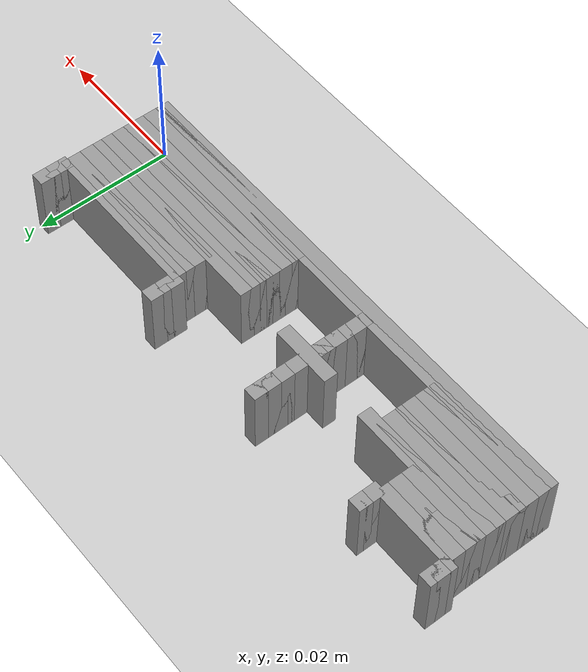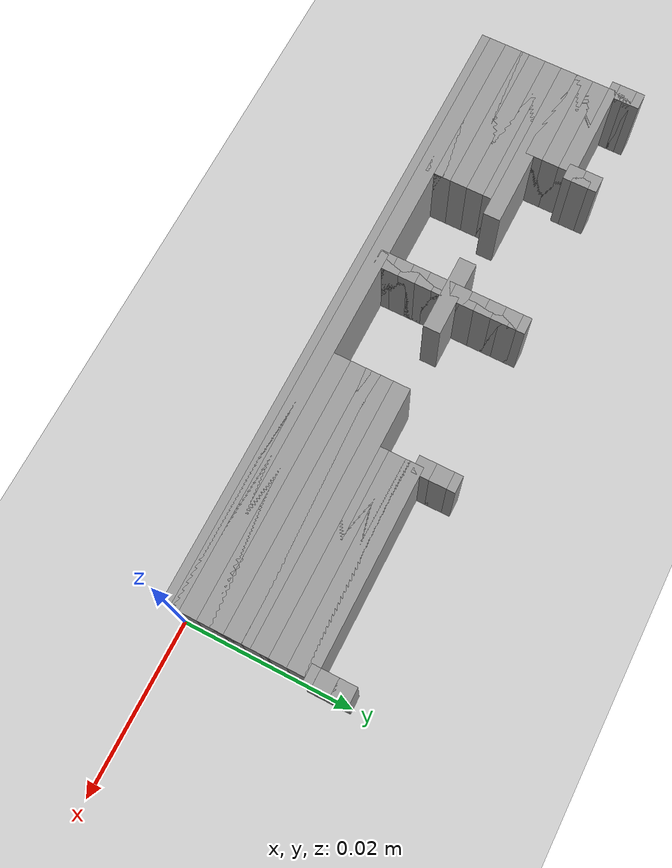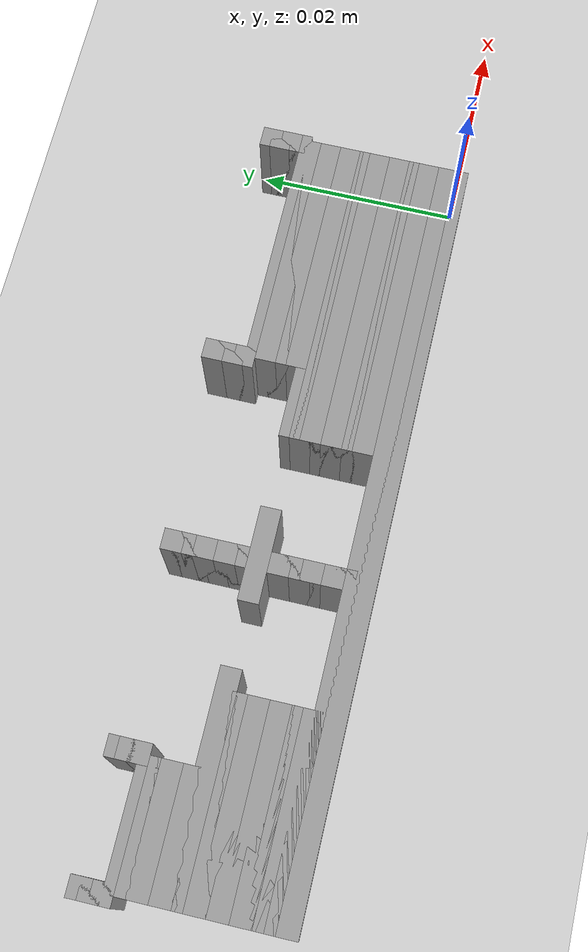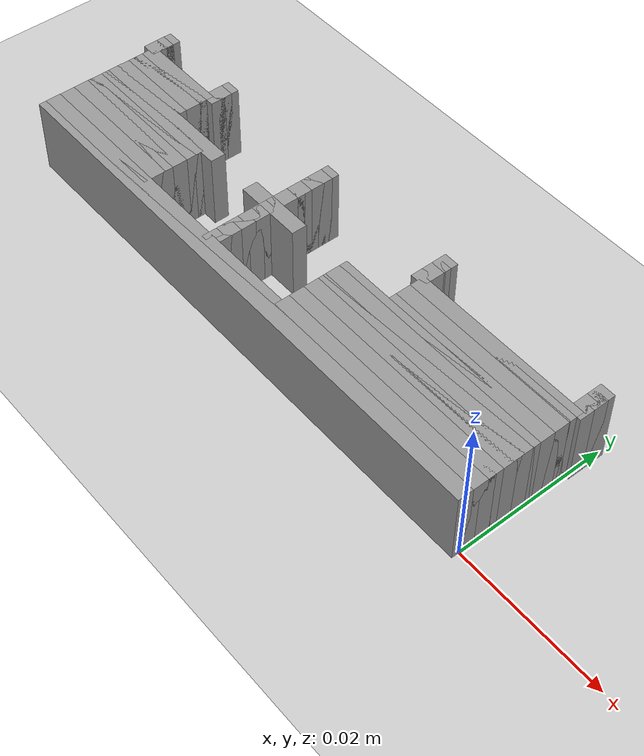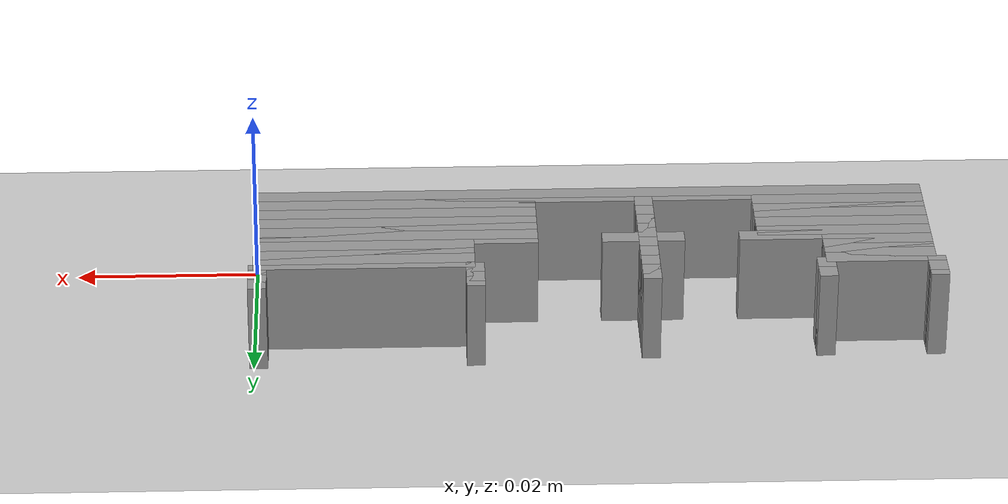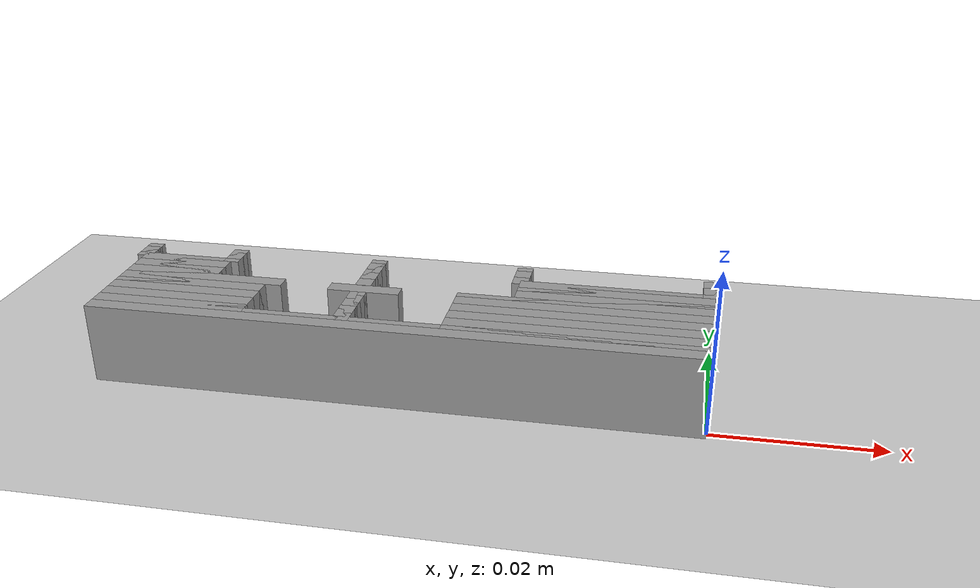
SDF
<sdf version="1.6">
 <world name="GridMap">
  <include><uri>model://sun</uri></include>
  <include><uri>model://ground_plane</uri></include>
  <model name="GridMap">
   <link name="Wall_(37.0,0.0)">
    <collision name="Wall_(37.0,0.0)_Collision">
     <geometry><box><size>0.074 0.002 0.01</size></box></geometry>
     <pose>-0.037 0.0 0.005 0 -0 0</pose>
    </collision>
    <inertial>
     <mass>0.5</mass>
     <pose>0 0.01 0 0 0 0</pose>
     <inertia><ixx>0.004</ixx><ixy>0.001</ixy><ixz>0</ixz><iyy>0.006</iyy><iyz>0</iyz><izz>0.007</izz></inertia>
    </inertial>
    <visual name="Wall_(37.0,0.0)_Visual">
     <geometry><box><size>0.074 0.002 0.01</size></box></geometry>
     <pose>-0.037 0.0 0.005 0 -0 0</pose>
     <material>
      <script><uri>file://media/materials/scripts/gazebo.material</uri><name>Gazebo/Grey</name></script>
      <ambient>1 1 1 1</ambient>
     </material>
     <meta><layer>0</layer></meta>
    </visual>
   </link>
   <link name="Wall_(37.0,1.0)">
    <collision name="Wall_(37.0,1.0)_Collision">
     <geometry><box><size>0.074 0.002 0.01</size></box></geometry>
     <pose>-0.037 0.001 0.005 0 -0 0</pose>
    </collision>
    <inertial>
     <mass>0.5</mass>
     <pose>0 0.01 0 0 0 0</pose>
     <inertia><ixx>0.004</ixx><ixy>0.001</ixy><ixz>0</ixz><iyy>0.006</iyy><iyz>0</iyz><izz>0.007</izz></inertia>
    </inertial>
    <visual name="Wall_(37.0,1.0)_Visual">
     <geometry><box><size>0.074 0.002 0.01</size></box></geometry>
     <pose>-0.037 0.001 0.005 0 -0 0</pose>
     <material>
      <script><uri>file://media/materials/scripts/gazebo.material</uri><name>Gazebo/Grey</name></script>
      <ambient>1 1 1 1</ambient>
     </material>
     <meta><layer>0</layer></meta>
    </visual>
   </link>
   <link name="Wall_(15.5,2.0)">
    <collision name="Wall_(15.5,2.0)_Collision">
     <geometry><box><size>0.031 0.002 0.01</size></box></geometry>
     <pose>-0.0155 0.002 0.005 0 -0 0</pose>
    </collision>
    <inertial>
     <mass>0.5</mass>
     <pose>0 0.01 0 0 0 0</pose>
     <inertia><ixx>0.004</ixx><ixy>0.001</ixy><ixz>0</ixz><iyy>0.006</iyy><iyz>0</iyz><izz>0.007</izz></inertia>
    </inertial>
    <visual name="Wall_(15.5,2.0)_Visual">
     <geometry><box><size>0.031 0.002 0.01</size></box></geometry>
     <pose>-0.0155 0.002 0.005 0 -0 0</pose>
     <material>
      <script><uri>file://media/materials/scripts/gazebo.material</uri><name>Gazebo/Grey</name></script>
      <ambient>1 1 1 1</ambient>
     </material>
     <meta><layer>0</layer></meta>
    </visual>
   </link>
   <link name="Wall_(43.0,2.0)">
    <collision name="Wall_(43.0,2.0)_Collision">
     <geometry><box><size>0.002 0.002 0.01</size></box></geometry>
     <pose>-0.043000000000000003 0.002 0.005 0 -0 0</pose>
    </collision>
    <inertial>
     <mass>0.5</mass>
     <pose>0 0.01 0 0 0 0</pose>
     <inertia><ixx>0.004</ixx><ixy>0.001</ixy><ixz>0</ixz><iyy>0.006</iyy><iyz>0</iyz><izz>0.007</izz></inertia>
    </inertial>
    <visual name="Wall_(43.0,2.0)_Visual">
     <geometry><box><size>0.002 0.002 0.01</size></box></geometry>
     <pose>-0.043000000000000003 0.002 0.005 0 -0 0</pose>
     <material>
      <script><uri>file://media/materials/scripts/gazebo.material</uri><name>Gazebo/Grey</name></script>
      <ambient>1 1 1 1</ambient>
     </material>
     <meta><layer>0</layer></meta>
    </visual>
   </link>
   <link name="Wall_(64.5,2.0)">
    <collision name="Wall_(64.5,2.0)_Collision">
     <geometry><box><size>0.019 0.002 0.01</size></box></geometry>
     <pose>-0.0645 0.002 0.005 0 -0 0</pose>
    </collision>
    <inertial>
     <mass>0.5</mass>
     <pose>0 0.01 0 0 0 0</pose>
     <inertia><ixx>0.004</ixx><ixy>0.001</ixy><ixz>0</ixz><iyy>0.006</iyy><iyz>0</iyz><izz>0.007</izz></inertia>
    </inertial>
    <visual name="Wall_(64.5,2.0)_Visual">
     <geometry><box><size>0.019 0.002 0.01</size></box></geometry>
     <pose>-0.0645 0.002 0.005 0 -0 0</pose>
     <material>
      <script><uri>file://media/materials/scripts/gazebo.material</uri><name>Gazebo/Grey</name></script>
      <ambient>1 1 1 1</ambient>
     </material>
     <meta><layer>0</layer></meta>
    </visual>
   </link>
   <link name="Wall_(15.5,3.0)">
    <collision name="Wall_(15.5,3.0)_Collision">
     <geometry><box><size>0.031 0.002 0.01</size></box></geometry>
     <pose>-0.0155 0.003 0.005 0 -0 0</pose>
    </collision>
    <inertial>
     <mass>0.5</mass>
     <pose>0 0.01 0 0 0 0</pose>
     <inertia><ixx>0.004</ixx><ixy>0.001</ixy><ixz>0</ixz><iyy>0.006</iyy><iyz>0</iyz><izz>0.007</izz></inertia>
    </inertial>
    <visual name="Wall_(15.5,3.0)_Visual">
     <geometry><box><size>0.031 0.002 0.01</size></box></geometry>
     <pose>-0.0155 0.003 0.005 0 -0 0</pose>
     <material>
      <script><uri>file://media/materials/scripts/gazebo.material</uri><name>Gazebo/Grey</name></script>
      <ambient>1 1 1 1</ambient>
     </material>
     <meta><layer>0</layer></meta>
    </visual>
   </link>
   <link name="Wall_(43.0,3.0)">
    <collision name="Wall_(43.0,3.0)_Collision">
     <geometry><box><size>0.002 0.002 0.01</size></box></geometry>
     <pose>-0.043000000000000003 0.003 0.005 0 -0 0</pose>
    </collision>
    <inertial>
     <mass>0.5</mass>
     <pose>0 0.01 0 0 0 0</pose>
     <inertia><ixx>0.004</ixx><ixy>0.001</ixy><ixz>0</ixz><iyy>0.006</iyy><iyz>0</iyz><izz>0.007</izz></inertia>
    </inertial>
    <visual name="Wall_(43.0,3.0)_Visual">
     <geometry><box><size>0.002 0.002 0.01</size></box></geometry>
     <pose>-0.043000000000000003 0.003 0.005 0 -0 0</pose>
     <material>
      <script><uri>file://media/materials/scripts/gazebo.material</uri><name>Gazebo/Grey</name></script>
      <ambient>1 1 1 1</ambient>
     </material>
     <meta><layer>0</layer></meta>
    </visual>
   </link>
   <link name="Wall_(64.5,3.0)">
    <collision name="Wall_(64.5,3.0)_Collision">
     <geometry><box><size>0.019 0.002 0.01</size></box></geometry>
     <pose>-0.0645 0.003 0.005 0 -0 0</pose>
    </collision>
    <inertial>
     <mass>0.5</mass>
     <pose>0 0.01 0 0 0 0</pose>
     <inertia><ixx>0.004</ixx><ixy>0.001</ixy><ixz>0</ixz><iyy>0.006</iyy><iyz>0</iyz><izz>0.007</izz></inertia>
    </inertial>
    <visual name="Wall_(64.5,3.0)_Visual">
     <geometry><box><size>0.019 0.002 0.01</size></box></geometry>
     <pose>-0.0645 0.003 0.005 0 -0 0</pose>
     <material>
      <script><uri>file://media/materials/scripts/gazebo.material</uri><name>Gazebo/Grey</name></script>
      <ambient>1 1 1 1</ambient>
     </material>
     <meta><layer>0</layer></meta>
    </visual>
   </link>
   <link name="Wall_(15.5,4.0)">
    <collision name="Wall_(15.5,4.0)_Collision">
     <geometry><box><size>0.031 0.002 0.01</size></box></geometry>
     <pose>-0.0155 0.004 0.005 0 -0 0</pose>
    </collision>
    <inertial>
     <mass>0.5</mass>
     <pose>0 0.01 0 0 0 0</pose>
     <inertia><ixx>0.004</ixx><ixy>0.001</ixy><ixz>0</ixz><iyy>0.006</iyy><iyz>0</iyz><izz>0.007</izz></inertia>
    </inertial>
    <visual name="Wall_(15.5,4.0)_Visual">
     <geometry><box><size>0.031 0.002 0.01</size></box></geometry>
     <pose>-0.0155 0.004 0.005 0 -0 0</pose>
     <material>
      <script><uri>file://media/materials/scripts/gazebo.material</uri><name>Gazebo/Grey</name></script>
      <ambient>1 1 1 1</ambient>
     </material>
     <meta><layer>0</layer></meta>
    </visual>
   </link>
   <link name="Wall_(43.0,4.0)">
    <collision name="Wall_(43.0,4.0)_Collision">
     <geometry><box><size>0.002 0.002 0.01</size></box></geometry>
     <pose>-0.043000000000000003 0.004 0.005 0 -0 0</pose>
    </collision>
    <inertial>
     <mass>0.5</mass>
     <pose>0 0.01 0 0 0 0</pose>
     <inertia><ixx>0.004</ixx><ixy>0.001</ixy><ixz>0</ixz><iyy>0.006</iyy><iyz>0</iyz><izz>0.007</izz></inertia>
    </inertial>
    <visual name="Wall_(43.0,4.0)_Visual">
     <geometry><box><size>0.002 0.002 0.01</size></box></geometry>
     <pose>-0.043000000000000003 0.004 0.005 0 -0 0</pose>
     <material>
      <script><uri>file://media/materials/scripts/gazebo.material</uri><name>Gazebo/Grey</name></script>
      <ambient>1 1 1 1</ambient>
     </material>
     <meta><layer>0</layer></meta>
    </visual>
   </link>
   <link name="Wall_(64.5,4.0)">
    <collision name="Wall_(64.5,4.0)_Collision">
     <geometry><box><size>0.019 0.002 0.01</size></box></geometry>
     <pose>-0.0645 0.004 0.005 0 -0 0</pose>
    </collision>
    <inertial>
     <mass>0.5</mass>
     <pose>0 0.01 0 0 0 0</pose>
     <inertia><ixx>0.004</ixx><ixy>0.001</ixy><ixz>0</ixz><iyy>0.006</iyy><iyz>0</iyz><izz>0.007</izz></inertia>
    </inertial>
    <visual name="Wall_(64.5,4.0)_Visual">
     <geometry><box><size>0.019 0.002 0.01</size></box></geometry>
     <pose>-0.0645 0.004 0.005 0 -0 0</pose>
     <material>
      <script><uri>file://media/materials/scripts/gazebo.material</uri><name>Gazebo/Grey</name></script>
      <ambient>1 1 1 1</ambient>
     </material>
     <meta><layer>0</layer></meta>
    </visual>
   </link>
   <link name="Wall_(15.5,5.0)">
    <collision name="Wall_(15.5,5.0)_Collision">
     <geometry><box><size>0.031 0.002 0.01</size></box></geometry>
     <pose>-0.0155 0.005 0.005 0 -0 0</pose>
    </collision>
    <inertial>
     <mass>0.5</mass>
     <pose>0 0.01 0 0 0 0</pose>
     <inertia><ixx>0.004</ixx><ixy>0.001</ixy><ixz>0</ixz><iyy>0.006</iyy><iyz>0</iyz><izz>0.007</izz></inertia>
    </inertial>
    <visual name="Wall_(15.5,5.0)_Visual">
     <geometry><box><size>0.031 0.002 0.01</size></box></geometry>
     <pose>-0.0155 0.005 0.005 0 -0 0</pose>
     <material>
      <script><uri>file://media/materials/scripts/gazebo.material</uri><name>Gazebo/Grey</name></script>
      <ambient>1 1 1 1</ambient>
     </material>
     <meta><layer>0</layer></meta>
    </visual>
   </link>
   <link name="Wall_(43.0,5.0)">
    <collision name="Wall_(43.0,5.0)_Collision">
     <geometry><box><size>0.002 0.002 0.01</size></box></geometry>
     <pose>-0.043000000000000003 0.005 0.005 0 -0 0</pose>
    </collision>
    <inertial>
     <mass>0.5</mass>
     <pose>0 0.01 0 0 0 0</pose>
     <inertia><ixx>0.004</ixx><ixy>0.001</ixy><ixz>0</ixz><iyy>0.006</iyy><iyz>0</iyz><izz>0.007</izz></inertia>
    </inertial>
    <visual name="Wall_(43.0,5.0)_Visual">
     <geometry><box><size>0.002 0.002 0.01</size></box></geometry>
     <pose>-0.043000000000000003 0.005 0.005 0 -0 0</pose>
     <material>
      <script><uri>file://media/materials/scripts/gazebo.material</uri><name>Gazebo/Grey</name></script>
      <ambient>1 1 1 1</ambient>
     </material>
     <meta><layer>0</layer></meta>
    </visual>
   </link>
   <link name="Wall_(64.5,5.0)">
    <collision name="Wall_(64.5,5.0)_Collision">
     <geometry><box><size>0.019 0.002 0.01</size></box></geometry>
     <pose>-0.0645 0.005 0.005 0 -0 0</pose>
    </collision>
    <inertial>
     <mass>0.5</mass>
     <pose>0 0.01 0 0 0 0</pose>
     <inertia><ixx>0.004</ixx><ixy>0.001</ixy><ixz>0</ixz><iyy>0.006</iyy><iyz>0</iyz><izz>0.007</izz></inertia>
    </inertial>
    <visual name="Wall_(64.5,5.0)_Visual">
     <geometry><box><size>0.019 0.002 0.01</size></box></geometry>
     <pose>-0.0645 0.005 0.005 0 -0 0</pose>
     <material>
      <script><uri>file://media/materials/scripts/gazebo.material</uri><name>Gazebo/Grey</name></script>
      <ambient>1 1 1 1</ambient>
     </material>
     <meta><layer>0</layer></meta>
    </visual>
   </link>
   <link name="Wall_(15.5,6.0)">
    <collision name="Wall_(15.5,6.0)_Collision">
     <geometry><box><size>0.031 0.002 0.01</size></box></geometry>
     <pose>-0.0155 0.006 0.005 0 -0 0</pose>
    </collision>
    <inertial>
     <mass>0.5</mass>
     <pose>0 0.01 0 0 0 0</pose>
     <inertia><ixx>0.004</ixx><ixy>0.001</ixy><ixz>0</ixz><iyy>0.006</iyy><iyz>0</iyz><izz>0.007</izz></inertia>
    </inertial>
    <visual name="Wall_(15.5,6.0)_Visual">
     <geometry><box><size>0.031 0.002 0.01</size></box></geometry>
     <pose>-0.0155 0.006 0.005 0 -0 0</pose>
     <material>
      <script><uri>file://media/materials/scripts/gazebo.material</uri><name>Gazebo/Grey</name></script>
      <ambient>1 1 1 1</ambient>
     </material>
     <meta><layer>0</layer></meta>
    </visual>
   </link>
   <link name="Wall_(43.0,6.0)">
    <collision name="Wall_(43.0,6.0)_Collision">
     <geometry><box><size>0.002 0.002 0.01</size></box></geometry>
     <pose>-0.043000000000000003 0.006 0.005 0 -0 0</pose>
    </collision>
    <inertial>
     <mass>0.5</mass>
     <pose>0 0.01 0 0 0 0</pose>
     <inertia><ixx>0.004</ixx><ixy>0.001</ixy><ixz>0</ixz><iyy>0.006</iyy><iyz>0</iyz><izz>0.007</izz></inertia>
    </inertial>
    <visual name="Wall_(43.0,6.0)_Visual">
     <geometry><box><size>0.002 0.002 0.01</size></box></geometry>
     <pose>-0.043000000000000003 0.006 0.005 0 -0 0</pose>
     <material>
      <script><uri>file://media/materials/scripts/gazebo.material</uri><name>Gazebo/Grey</name></script>
      <ambient>1 1 1 1</ambient>
     </material>
     <meta><layer>0</layer></meta>
    </visual>
   </link>
   <link name="Wall_(64.5,6.0)">
    <collision name="Wall_(64.5,6.0)_Collision">
     <geometry><box><size>0.019 0.002 0.01</size></box></geometry>
     <pose>-0.0645 0.006 0.005 0 -0 0</pose>
    </collision>
    <inertial>
     <mass>0.5</mass>
     <pose>0 0.01 0 0 0 0</pose>
     <inertia><ixx>0.004</ixx><ixy>0.001</ixy><ixz>0</ixz><iyy>0.006</iyy><iyz>0</iyz><izz>0.007</izz></inertia>
    </inertial>
    <visual name="Wall_(64.5,6.0)_Visual">
     <geometry><box><size>0.019 0.002 0.01</size></box></geometry>
     <pose>-0.0645 0.006 0.005 0 -0 0</pose>
     <material>
      <script><uri>file://media/materials/scripts/gazebo.material</uri><name>Gazebo/Grey</name></script>
      <ambient>1 1 1 1</ambient>
     </material>
     <meta><layer>0</layer></meta>
    </visual>
   </link>
   <link name="Wall_(15.5,7.0)">
    <collision name="Wall_(15.5,7.0)_Collision">
     <geometry><box><size>0.031 0.002 0.01</size></box></geometry>
     <pose>-0.0155 0.007 0.005 0 -0 0</pose>
    </collision>
    <inertial>
     <mass>0.5</mass>
     <pose>0 0.01 0 0 0 0</pose>
     <inertia><ixx>0.004</ixx><ixy>0.001</ixy><ixz>0</ixz><iyy>0.006</iyy><iyz>0</iyz><izz>0.007</izz></inertia>
    </inertial>
    <visual name="Wall_(15.5,7.0)_Visual">
     <geometry><box><size>0.031 0.002 0.01</size></box></geometry>
     <pose>-0.0155 0.007 0.005 0 -0 0</pose>
     <material>
      <script><uri>file://media/materials/scripts/gazebo.material</uri><name>Gazebo/Grey</name></script>
      <ambient>1 1 1 1</ambient>
     </material>
     <meta><layer>0</layer></meta>
    </visual>
   </link>
   <link name="Wall_(43.0,7.0)">
    <collision name="Wall_(43.0,7.0)_Collision">
     <geometry><box><size>0.002 0.002 0.01</size></box></geometry>
     <pose>-0.043000000000000003 0.007 0.005 0 -0 0</pose>
    </collision>
    <inertial>
     <mass>0.5</mass>
     <pose>0 0.01 0 0 0 0</pose>
     <inertia><ixx>0.004</ixx><ixy>0.001</ixy><ixz>0</ixz><iyy>0.006</iyy><iyz>0</iyz><izz>0.007</izz></inertia>
    </inertial>
    <visual name="Wall_(43.0,7.0)_Visual">
     <geometry><box><size>0.002 0.002 0.01</size></box></geometry>
     <pose>-0.043000000000000003 0.007 0.005 0 -0 0</pose>
     <material>
      <script><uri>file://media/materials/scripts/gazebo.material</uri><name>Gazebo/Grey</name></script>
      <ambient>1 1 1 1</ambient>
     </material>
     <meta><layer>0</layer></meta>
    </visual>
   </link>
   <link name="Wall_(64.5,7.0)">
    <collision name="Wall_(64.5,7.0)_Collision">
     <geometry><box><size>0.019 0.002 0.01</size></box></geometry>
     <pose>-0.0645 0.007 0.005 0 -0 0</pose>
    </collision>
    <inertial>
     <mass>0.5</mass>
     <pose>0 0.01 0 0 0 0</pose>
     <inertia><ixx>0.004</ixx><ixy>0.001</ixy><ixz>0</ixz><iyy>0.006</iyy><iyz>0</iyz><izz>0.007</izz></inertia>
    </inertial>
    <visual name="Wall_(64.5,7.0)_Visual">
     <geometry><box><size>0.019 0.002 0.01</size></box></geometry>
     <pose>-0.0645 0.007 0.005 0 -0 0</pose>
     <material>
      <script><uri>file://media/materials/scripts/gazebo.material</uri><name>Gazebo/Grey</name></script>
      <ambient>1 1 1 1</ambient>
     </material>
     <meta><layer>0</layer></meta>
    </visual>
   </link>
   <link name="Wall_(15.5,8.0)">
    <collision name="Wall_(15.5,8.0)_Collision">
     <geometry><box><size>0.031 0.002 0.01</size></box></geometry>
     <pose>-0.0155 0.008 0.005 0 -0 0</pose>
    </collision>
    <inertial>
     <mass>0.5</mass>
     <pose>0 0.01 0 0 0 0</pose>
     <inertia><ixx>0.004</ixx><ixy>0.001</ixy><ixz>0</ixz><iyy>0.006</iyy><iyz>0</iyz><izz>0.007</izz></inertia>
    </inertial>
    <visual name="Wall_(15.5,8.0)_Visual">
     <geometry><box><size>0.031 0.002 0.01</size></box></geometry>
     <pose>-0.0155 0.008 0.005 0 -0 0</pose>
     <material>
      <script><uri>file://media/materials/scripts/gazebo.material</uri><name>Gazebo/Grey</name></script>
      <ambient>1 1 1 1</ambient>
     </material>
     <meta><layer>0</layer></meta>
    </visual>
   </link>
   <link name="Wall_(43.0,8.0)">
    <collision name="Wall_(43.0,8.0)_Collision">
     <geometry><box><size>0.002 0.002 0.01</size></box></geometry>
     <pose>-0.043000000000000003 0.008 0.005 0 -0 0</pose>
    </collision>
    <inertial>
     <mass>0.5</mass>
     <pose>0 0.01 0 0 0 0</pose>
     <inertia><ixx>0.004</ixx><ixy>0.001</ixy><ixz>0</ixz><iyy>0.006</iyy><iyz>0</iyz><izz>0.007</izz></inertia>
    </inertial>
    <visual name="Wall_(43.0,8.0)_Visual">
     <geometry><box><size>0.002 0.002 0.01</size></box></geometry>
     <pose>-0.043000000000000003 0.008 0.005 0 -0 0</pose>
     <material>
      <script><uri>file://media/materials/scripts/gazebo.material</uri><name>Gazebo/Grey</name></script>
      <ambient>1 1 1 1</ambient>
     </material>
     <meta><layer>0</layer></meta>
    </visual>
   </link>
   <link name="Wall_(64.5,8.0)">
    <collision name="Wall_(64.5,8.0)_Collision">
     <geometry><box><size>0.019 0.002 0.01</size></box></geometry>
     <pose>-0.0645 0.008 0.005 0 -0 0</pose>
    </collision>
    <inertial>
     <mass>0.5</mass>
     <pose>0 0.01 0 0 0 0</pose>
     <inertia><ixx>0.004</ixx><ixy>0.001</ixy><ixz>0</ixz><iyy>0.006</iyy><iyz>0</iyz><izz>0.007</izz></inertia>
    </inertial>
    <visual name="Wall_(64.5,8.0)_Visual">
     <geometry><box><size>0.019 0.002 0.01</size></box></geometry>
     <pose>-0.0645 0.008 0.005 0 -0 0</pose>
     <material>
      <script><uri>file://media/materials/scripts/gazebo.material</uri><name>Gazebo/Grey</name></script>
      <ambient>1 1 1 1</ambient>
     </material>
     <meta><layer>0</layer></meta>
    </visual>
   </link>
   <link name="Wall_(15.5,9.0)">
    <collision name="Wall_(15.5,9.0)_Collision">
     <geometry><box><size>0.031 0.002 0.01</size></box></geometry>
     <pose>-0.0155 0.009000000000000001 0.005 0 -0 0</pose>
    </collision>
    <inertial>
     <mass>0.5</mass>
     <pose>0 0.01 0 0 0 0</pose>
     <inertia><ixx>0.004</ixx><ixy>0.001</ixy><ixz>0</ixz><iyy>0.006</iyy><iyz>0</iyz><izz>0.007</izz></inertia>
    </inertial>
    <visual name="Wall_(15.5,9.0)_Visual">
     <geometry><box><size>0.031 0.002 0.01</size></box></geometry>
     <pose>-0.0155 0.009000000000000001 0.005 0 -0 0</pose>
     <material>
      <script><uri>file://media/materials/scripts/gazebo.material</uri><name>Gazebo/Grey</name></script>
      <ambient>1 1 1 1</ambient>
     </material>
     <meta><layer>0</layer></meta>
    </visual>
   </link>
   <link name="Wall_(43.0,9.0)">
    <collision name="Wall_(43.0,9.0)_Collision">
     <geometry><box><size>0.002 0.002 0.01</size></box></geometry>
     <pose>-0.043000000000000003 0.009000000000000001 0.005 0 -0 0</pose>
    </collision>
    <inertial>
     <mass>0.5</mass>
     <pose>0 0.01 0 0 0 0</pose>
     <inertia><ixx>0.004</ixx><ixy>0.001</ixy><ixz>0</ixz><iyy>0.006</iyy><iyz>0</iyz><izz>0.007</izz></inertia>
    </inertial>
    <visual name="Wall_(43.0,9.0)_Visual">
     <geometry><box><size>0.002 0.002 0.01</size></box></geometry>
     <pose>-0.043000000000000003 0.009000000000000001 0.005 0 -0 0</pose>
     <material>
      <script><uri>file://media/materials/scripts/gazebo.material</uri><name>Gazebo/Grey</name></script>
      <ambient>1 1 1 1</ambient>
     </material>
     <meta><layer>0</layer></meta>
    </visual>
   </link>
   <link name="Wall_(64.5,9.0)">
    <collision name="Wall_(64.5,9.0)_Collision">
     <geometry><box><size>0.019 0.002 0.01</size></box></geometry>
     <pose>-0.0645 0.009000000000000001 0.005 0 -0 0</pose>
    </collision>
    <inertial>
     <mass>0.5</mass>
     <pose>0 0.01 0 0 0 0</pose>
     <inertia><ixx>0.004</ixx><ixy>0.001</ixy><ixz>0</ixz><iyy>0.006</iyy><iyz>0</iyz><izz>0.007</izz></inertia>
    </inertial>
    <visual name="Wall_(64.5,9.0)_Visual">
     <geometry><box><size>0.019 0.002 0.01</size></box></geometry>
     <pose>-0.0645 0.009000000000000001 0.005 0 -0 0</pose>
     <material>
      <script><uri>file://media/materials/scripts/gazebo.material</uri><name>Gazebo/Grey</name></script>
      <ambient>1 1 1 1</ambient>
     </material>
     <meta><layer>0</layer></meta>
    </visual>
   </link>
   <link name="Wall_(15.5,10.0)">
    <collision name="Wall_(15.5,10.0)_Collision">
     <geometry><box><size>0.031 0.002 0.01</size></box></geometry>
     <pose>-0.0155 0.01 0.005 0 -0 0</pose>
    </collision>
    <inertial>
     <mass>0.5</mass>
     <pose>0 0.01 0 0 0 0</pose>
     <inertia><ixx>0.004</ixx><ixy>0.001</ixy><ixz>0</ixz><iyy>0.006</iyy><iyz>0</iyz><izz>0.007</izz></inertia>
    </inertial>
    <visual name="Wall_(15.5,10.0)_Visual">
     <geometry><box><size>0.031 0.002 0.01</size></box></geometry>
     <pose>-0.0155 0.01 0.005 0 -0 0</pose>
     <material>
      <script><uri>file://media/materials/scripts/gazebo.material</uri><name>Gazebo/Grey</name></script>
      <ambient>1 1 1 1</ambient>
     </material>
     <meta><layer>0</layer></meta>
    </visual>
   </link>
   <link name="Wall_(42.5,10.0)">
    <collision name="Wall_(42.5,10.0)_Collision">
     <geometry><box><size>0.009000000000000001 0.002 0.01</size></box></geometry>
     <pose>-0.0425 0.01 0.005 0 -0 0</pose>
    </collision>
    <inertial>
     <mass>0.5</mass>
     <pose>0 0.01 0 0 0 0</pose>
     <inertia><ixx>0.004</ixx><ixy>0.001</ixy><ixz>0</ixz><iyy>0.006</iyy><iyz>0</iyz><izz>0.007</izz></inertia>
    </inertial>
    <visual name="Wall_(42.5,10.0)_Visual">
     <geometry><box><size>0.009000000000000001 0.002 0.01</size></box></geometry>
     <pose>-0.0425 0.01 0.005 0 -0 0</pose>
     <material>
      <script><uri>file://media/materials/scripts/gazebo.material</uri><name>Gazebo/Grey</name></script>
      <ambient>1 1 1 1</ambient>
     </material>
     <meta><layer>0</layer></meta>
    </visual>
   </link>
   <link name="Wall_(63.5,10.0)">
    <collision name="Wall_(63.5,10.0)_Collision">
     <geometry><box><size>0.021 0.002 0.01</size></box></geometry>
     <pose>-0.0635 0.01 0.005 0 -0 0</pose>
    </collision>
    <inertial>
     <mass>0.5</mass>
     <pose>0 0.01 0 0 0 0</pose>
     <inertia><ixx>0.004</ixx><ixy>0.001</ixy><ixz>0</ixz><iyy>0.006</iyy><iyz>0</iyz><izz>0.007</izz></inertia>
    </inertial>
    <visual name="Wall_(63.5,10.0)_Visual">
     <geometry><box><size>0.021 0.002 0.01</size></box></geometry>
     <pose>-0.0635 0.01 0.005 0 -0 0</pose>
     <material>
      <script><uri>file://media/materials/scripts/gazebo.material</uri><name>Gazebo/Grey</name></script>
      <ambient>1 1 1 1</ambient>
     </material>
     <meta><layer>0</layer></meta>
    </visual>
   </link>
   <link name="Wall_(12.0,11.0)">
    <collision name="Wall_(12.0,11.0)_Collision">
     <geometry><box><size>0.024 0.002 0.01</size></box></geometry>
     <pose>-0.012 0.011 0.005 0 -0 0</pose>
    </collision>
    <inertial>
     <mass>0.5</mass>
     <pose>0 0.01 0 0 0 0</pose>
     <inertia><ixx>0.004</ixx><ixy>0.001</ixy><ixz>0</ixz><iyy>0.006</iyy><iyz>0</iyz><izz>0.007</izz></inertia>
    </inertial>
    <visual name="Wall_(12.0,11.0)_Visual">
     <geometry><box><size>0.024 0.002 0.01</size></box></geometry>
     <pose>-0.012 0.011 0.005 0 -0 0</pose>
     <material>
      <script><uri>file://media/materials/scripts/gazebo.material</uri><name>Gazebo/Grey</name></script>
      <ambient>1 1 1 1</ambient>
     </material>
     <meta><layer>0</layer></meta>
    </visual>
   </link>
   <link name="Wall_(43.0,11.0)">
    <collision name="Wall_(43.0,11.0)_Collision">
     <geometry><box><size>0.002 0.002 0.01</size></box></geometry>
     <pose>-0.043000000000000003 0.011 0.005 0 -0 0</pose>
    </collision>
    <inertial>
     <mass>0.5</mass>
     <pose>0 0.01 0 0 0 0</pose>
     <inertia><ixx>0.004</ixx><ixy>0.001</ixy><ixz>0</ixz><iyy>0.006</iyy><iyz>0</iyz><izz>0.007</izz></inertia>
    </inertial>
    <visual name="Wall_(43.0,11.0)_Visual">
     <geometry><box><size>0.002 0.002 0.01</size></box></geometry>
     <pose>-0.043000000000000003 0.011 0.005 0 -0 0</pose>
     <material>
      <script><uri>file://media/materials/scripts/gazebo.material</uri><name>Gazebo/Grey</name></script>
      <ambient>1 1 1 1</ambient>
     </material>
     <meta><layer>0</layer></meta>
    </visual>
   </link>
   <link name="Wall_(68.0,11.0)">
    <collision name="Wall_(68.0,11.0)_Collision">
     <geometry><box><size>0.012 0.002 0.01</size></box></geometry>
     <pose>-0.068 0.011 0.005 0 -0 0</pose>
    </collision>
    <inertial>
     <mass>0.5</mass>
     <pose>0 0.01 0 0 0 0</pose>
     <inertia><ixx>0.004</ixx><ixy>0.001</ixy><ixz>0</ixz><iyy>0.006</iyy><iyz>0</iyz><izz>0.007</izz></inertia>
    </inertial>
    <visual name="Wall_(68.0,11.0)_Visual">
     <geometry><box><size>0.012 0.002 0.01</size></box></geometry>
     <pose>-0.068 0.011 0.005 0 -0 0</pose>
     <material>
      <script><uri>file://media/materials/scripts/gazebo.material</uri><name>Gazebo/Grey</name></script>
      <ambient>1 1 1 1</ambient>
     </material>
     <meta><layer>0</layer></meta>
    </visual>
   </link>
   <link name="Wall_(12.0,12.0)">
    <collision name="Wall_(12.0,12.0)_Collision">
     <geometry><box><size>0.024 0.002 0.01</size></box></geometry>
     <pose>-0.012 0.012 0.005 0 -0 0</pose>
    </collision>
    <inertial>
     <mass>0.5</mass>
     <pose>0 0.01 0 0 0 0</pose>
     <inertia><ixx>0.004</ixx><ixy>0.001</ixy><ixz>0</ixz><iyy>0.006</iyy><iyz>0</iyz><izz>0.007</izz></inertia>
    </inertial>
    <visual name="Wall_(12.0,12.0)_Visual">
     <geometry><box><size>0.024 0.002 0.01</size></box></geometry>
     <pose>-0.012 0.012 0.005 0 -0 0</pose>
     <material>
      <script><uri>file://media/materials/scripts/gazebo.material</uri><name>Gazebo/Grey</name></script>
      <ambient>1 1 1 1</ambient>
     </material>
     <meta><layer>0</layer></meta>
    </visual>
   </link>
   <link name="Wall_(43.0,12.0)">
    <collision name="Wall_(43.0,12.0)_Collision">
     <geometry><box><size>0.002 0.002 0.01</size></box></geometry>
     <pose>-0.043000000000000003 0.012 0.005 0 -0 0</pose>
    </collision>
    <inertial>
     <mass>0.5</mass>
     <pose>0 0.01 0 0 0 0</pose>
     <inertia><ixx>0.004</ixx><ixy>0.001</ixy><ixz>0</ixz><iyy>0.006</iyy><iyz>0</iyz><izz>0.007</izz></inertia>
    </inertial>
    <visual name="Wall_(43.0,12.0)_Visual">
     <geometry><box><size>0.002 0.002 0.01</size></box></geometry>
     <pose>-0.043000000000000003 0.012 0.005 0 -0 0</pose>
     <material>
      <script><uri>file://media/materials/scripts/gazebo.material</uri><name>Gazebo/Grey</name></script>
      <ambient>1 1 1 1</ambient>
     </material>
     <meta><layer>0</layer></meta>
    </visual>
   </link>
   <link name="Wall_(68.0,12.0)">
    <collision name="Wall_(68.0,12.0)_Collision">
     <geometry><box><size>0.012 0.002 0.01</size></box></geometry>
     <pose>-0.068 0.012 0.005 0 -0 0</pose>
    </collision>
    <inertial>
     <mass>0.5</mass>
     <pose>0 0.01 0 0 0 0</pose>
     <inertia><ixx>0.004</ixx><ixy>0.001</ixy><ixz>0</ixz><iyy>0.006</iyy><iyz>0</iyz><izz>0.007</izz></inertia>
    </inertial>
    <visual name="Wall_(68.0,12.0)_Visual">
     <geometry><box><size>0.012 0.002 0.01</size></box></geometry>
     <pose>-0.068 0.012 0.005 0 -0 0</pose>
     <material>
      <script><uri>file://media/materials/scripts/gazebo.material</uri><name>Gazebo/Grey</name></script>
      <ambient>1 1 1 1</ambient>
     </material>
     <meta><layer>0</layer></meta>
    </visual>
   </link>
   <link name="Wall_(12.0,13.0)">
    <collision name="Wall_(12.0,13.0)_Collision">
     <geometry><box><size>0.024 0.002 0.01</size></box></geometry>
     <pose>-0.012 0.013000000000000001 0.005 0 -0 0</pose>
    </collision>
    <inertial>
     <mass>0.5</mass>
     <pose>0 0.01 0 0 0 0</pose>
     <inertia><ixx>0.004</ixx><ixy>0.001</ixy><ixz>0</ixz><iyy>0.006</iyy><iyz>0</iyz><izz>0.007</izz></inertia>
    </inertial>
    <visual name="Wall_(12.0,13.0)_Visual">
     <geometry><box><size>0.024 0.002 0.01</size></box></geometry>
     <pose>-0.012 0.013000000000000001 0.005 0 -0 0</pose>
     <material>
      <script><uri>file://media/materials/scripts/gazebo.material</uri><name>Gazebo/Grey</name></script>
      <ambient>1 1 1 1</ambient>
     </material>
     <meta><layer>0</layer></meta>
    </visual>
   </link>
   <link name="Wall_(43.0,13.0)">
    <collision name="Wall_(43.0,13.0)_Collision">
     <geometry><box><size>0.002 0.002 0.01</size></box></geometry>
     <pose>-0.043000000000000003 0.013000000000000001 0.005 0 -0 0</pose>
    </collision>
    <inertial>
     <mass>0.5</mass>
     <pose>0 0.01 0 0 0 0</pose>
     <inertia><ixx>0.004</ixx><ixy>0.001</ixy><ixz>0</ixz><iyy>0.006</iyy><iyz>0</iyz><izz>0.007</izz></inertia>
    </inertial>
    <visual name="Wall_(43.0,13.0)_Visual">
     <geometry><box><size>0.002 0.002 0.01</size></box></geometry>
     <pose>-0.043000000000000003 0.013000000000000001 0.005 0 -0 0</pose>
     <material>
      <script><uri>file://media/materials/scripts/gazebo.material</uri><name>Gazebo/Grey</name></script>
      <ambient>1 1 1 1</ambient>
     </material>
     <meta><layer>0</layer></meta>
    </visual>
   </link>
   <link name="Wall_(68.0,13.0)">
    <collision name="Wall_(68.0,13.0)_Collision">
     <geometry><box><size>0.012 0.002 0.01</size></box></geometry>
     <pose>-0.068 0.013000000000000001 0.005 0 -0 0</pose>
    </collision>
    <inertial>
     <mass>0.5</mass>
     <pose>0 0.01 0 0 0 0</pose>
     <inertia><ixx>0.004</ixx><ixy>0.001</ixy><ixz>0</ixz><iyy>0.006</iyy><iyz>0</iyz><izz>0.007</izz></inertia>
    </inertial>
    <visual name="Wall_(68.0,13.0)_Visual">
     <geometry><box><size>0.012 0.002 0.01</size></box></geometry>
     <pose>-0.068 0.013000000000000001 0.005 0 -0 0</pose>
     <material>
      <script><uri>file://media/materials/scripts/gazebo.material</uri><name>Gazebo/Grey</name></script>
      <ambient>1 1 1 1</ambient>
     </material>
     <meta><layer>0</layer></meta>
    </visual>
   </link>
   <link name="Wall_(12.0,14.0)">
    <collision name="Wall_(12.0,14.0)_Collision">
     <geometry><box><size>0.024 0.002 0.01</size></box></geometry>
     <pose>-0.012 0.014 0.005 0 -0 0</pose>
    </collision>
    <inertial>
     <mass>0.5</mass>
     <pose>0 0.01 0 0 0 0</pose>
     <inertia><ixx>0.004</ixx><ixy>0.001</ixy><ixz>0</ixz><iyy>0.006</iyy><iyz>0</iyz><izz>0.007</izz></inertia>
    </inertial>
    <visual name="Wall_(12.0,14.0)_Visual">
     <geometry><box><size>0.024 0.002 0.01</size></box></geometry>
     <pose>-0.012 0.014 0.005 0 -0 0</pose>
     <material>
      <script><uri>file://media/materials/scripts/gazebo.material</uri><name>Gazebo/Grey</name></script>
      <ambient>1 1 1 1</ambient>
     </material>
     <meta><layer>0</layer></meta>
    </visual>
   </link>
   <link name="Wall_(43.0,14.0)">
    <collision name="Wall_(43.0,14.0)_Collision">
     <geometry><box><size>0.002 0.002 0.01</size></box></geometry>
     <pose>-0.043000000000000003 0.014 0.005 0 -0 0</pose>
    </collision>
    <inertial>
     <mass>0.5</mass>
     <pose>0 0.01 0 0 0 0</pose>
     <inertia><ixx>0.004</ixx><ixy>0.001</ixy><ixz>0</ixz><iyy>0.006</iyy><iyz>0</iyz><izz>0.007</izz></inertia>
    </inertial>
    <visual name="Wall_(43.0,14.0)_Visual">
     <geometry><box><size>0.002 0.002 0.01</size></box></geometry>
     <pose>-0.043000000000000003 0.014 0.005 0 -0 0</pose>
     <material>
      <script><uri>file://media/materials/scripts/gazebo.material</uri><name>Gazebo/Grey</name></script>
      <ambient>1 1 1 1</ambient>
     </material>
     <meta><layer>0</layer></meta>
    </visual>
   </link>
   <link name="Wall_(68.0,14.0)">
    <collision name="Wall_(68.0,14.0)_Collision">
     <geometry><box><size>0.012 0.002 0.01</size></box></geometry>
     <pose>-0.068 0.014 0.005 0 -0 0</pose>
    </collision>
    <inertial>
     <mass>0.5</mass>
     <pose>0 0.01 0 0 0 0</pose>
     <inertia><ixx>0.004</ixx><ixy>0.001</ixy><ixz>0</ixz><iyy>0.006</iyy><iyz>0</iyz><izz>0.007</izz></inertia>
    </inertial>
    <visual name="Wall_(68.0,14.0)_Visual">
     <geometry><box><size>0.012 0.002 0.01</size></box></geometry>
     <pose>-0.068 0.014 0.005 0 -0 0</pose>
     <material>
      <script><uri>file://media/materials/scripts/gazebo.material</uri><name>Gazebo/Grey</name></script>
      <ambient>1 1 1 1</ambient>
     </material>
     <meta><layer>0</layer></meta>
    </visual>
   </link>
   <link name="Wall_(12.0,15.0)">
    <collision name="Wall_(12.0,15.0)_Collision">
     <geometry><box><size>0.024 0.002 0.01</size></box></geometry>
     <pose>-0.012 0.015 0.005 0 -0 0</pose>
    </collision>
    <inertial>
     <mass>0.5</mass>
     <pose>0 0.01 0 0 0 0</pose>
     <inertia><ixx>0.004</ixx><ixy>0.001</ixy><ixz>0</ixz><iyy>0.006</iyy><iyz>0</iyz><izz>0.007</izz></inertia>
    </inertial>
    <visual name="Wall_(12.0,15.0)_Visual">
     <geometry><box><size>0.024 0.002 0.01</size></box></geometry>
     <pose>-0.012 0.015 0.005 0 -0 0</pose>
     <material>
      <script><uri>file://media/materials/scripts/gazebo.material</uri><name>Gazebo/Grey</name></script>
      <ambient>1 1 1 1</ambient>
     </material>
     <meta><layer>0</layer></meta>
    </visual>
   </link>
   <link name="Wall_(43.0,15.0)">
    <collision name="Wall_(43.0,15.0)_Collision">
     <geometry><box><size>0.002 0.002 0.01</size></box></geometry>
     <pose>-0.043000000000000003 0.015 0.005 0 -0 0</pose>
    </collision>
    <inertial>
     <mass>0.5</mass>
     <pose>0 0.01 0 0 0 0</pose>
     <inertia><ixx>0.004</ixx><ixy>0.001</ixy><ixz>0</ixz><iyy>0.006</iyy><iyz>0</iyz><izz>0.007</izz></inertia>
    </inertial>
    <visual name="Wall_(43.0,15.0)_Visual">
     <geometry><box><size>0.002 0.002 0.01</size></box></geometry>
     <pose>-0.043000000000000003 0.015 0.005 0 -0 0</pose>
     <material>
      <script><uri>file://media/materials/scripts/gazebo.material</uri><name>Gazebo/Grey</name></script>
      <ambient>1 1 1 1</ambient>
     </material>
     <meta><layer>0</layer></meta>
    </visual>
   </link>
   <link name="Wall_(68.0,15.0)">
    <collision name="Wall_(68.0,15.0)_Collision">
     <geometry><box><size>0.012 0.002 0.01</size></box></geometry>
     <pose>-0.068 0.015 0.005 0 -0 0</pose>
    </collision>
    <inertial>
     <mass>0.5</mass>
     <pose>0 0.01 0 0 0 0</pose>
     <inertia><ixx>0.004</ixx><ixy>0.001</ixy><ixz>0</ixz><iyy>0.006</iyy><iyz>0</iyz><izz>0.007</izz></inertia>
    </inertial>
    <visual name="Wall_(68.0,15.0)_Visual">
     <geometry><box><size>0.012 0.002 0.01</size></box></geometry>
     <pose>-0.068 0.015 0.005 0 -0 0</pose>
     <material>
      <script><uri>file://media/materials/scripts/gazebo.material</uri><name>Gazebo/Grey</name></script>
      <ambient>1 1 1 1</ambient>
     </material>
     <meta><layer>0</layer></meta>
    </visual>
   </link>
   <link name="Wall_(0.5,16.0)">
    <collision name="Wall_(0.5,16.0)_Collision">
     <geometry><box><size>0.002 0.002 0.01</size></box></geometry>
     <pose>-0.0005 0.016 0.005 0 -0 0</pose>
    </collision>
    <inertial>
     <mass>0.5</mass>
     <pose>0 0.01 0 0 0 0</pose>
     <inertia><ixx>0.004</ixx><ixy>0.001</ixy><ixz>0</ixz><iyy>0.006</iyy><iyz>0</iyz><izz>0.007</izz></inertia>
    </inertial>
    <visual name="Wall_(0.5,16.0)_Visual">
     <geometry><box><size>0.002 0.002 0.01</size></box></geometry>
     <pose>-0.0005 0.016 0.005 0 -0 0</pose>
     <material>
      <script><uri>file://media/materials/scripts/gazebo.material</uri><name>Gazebo/Grey</name></script>
      <ambient>1 1 1 1</ambient>
     </material>
     <meta><layer>0</layer></meta>
    </visual>
   </link>
   <link name="Wall_(24.0,16.0)">
    <collision name="Wall_(24.0,16.0)_Collision">
     <geometry><box><size>0.002 0.002 0.01</size></box></geometry>
     <pose>-0.024 0.016 0.005 0 -0 0</pose>
    </collision>
    <inertial>
     <mass>0.5</mass>
     <pose>0 0.01 0 0 0 0</pose>
     <inertia><ixx>0.004</ixx><ixy>0.001</ixy><ixz>0</ixz><iyy>0.006</iyy><iyz>0</iyz><izz>0.007</izz></inertia>
    </inertial>
    <visual name="Wall_(24.0,16.0)_Visual">
     <geometry><box><size>0.002 0.002 0.01</size></box></geometry>
     <pose>-0.024 0.016 0.005 0 -0 0</pose>
     <material>
      <script><uri>file://media/materials/scripts/gazebo.material</uri><name>Gazebo/Grey</name></script>
      <ambient>1 1 1 1</ambient>
     </material>
     <meta><layer>0</layer></meta>
    </visual>
   </link>
   <link name="Wall_(43.0,16.0)">
    <collision name="Wall_(43.0,16.0)_Collision">
     <geometry><box><size>0.002 0.002 0.01</size></box></geometry>
     <pose>-0.043000000000000003 0.016 0.005 0 -0 0</pose>
    </collision>
    <inertial>
     <mass>0.5</mass>
     <pose>0 0.01 0 0 0 0</pose>
     <inertia><ixx>0.004</ixx><ixy>0.001</ixy><ixz>0</ixz><iyy>0.006</iyy><iyz>0</iyz><izz>0.007</izz></inertia>
    </inertial>
    <visual name="Wall_(43.0,16.0)_Visual">
     <geometry><box><size>0.002 0.002 0.01</size></box></geometry>
     <pose>-0.043000000000000003 0.016 0.005 0 -0 0</pose>
     <material>
      <script><uri>file://media/materials/scripts/gazebo.material</uri><name>Gazebo/Grey</name></script>
      <ambient>1 1 1 1</ambient>
     </material>
     <meta><layer>0</layer></meta>
    </visual>
   </link>
   <link name="Wall_(62.0,16.0)">
    <collision name="Wall_(62.0,16.0)_Collision">
     <geometry><box><size>0.002 0.002 0.01</size></box></geometry>
     <pose>-0.062 0.016 0.005 0 -0 0</pose>
    </collision>
    <inertial>
     <mass>0.5</mass>
     <pose>0 0.01 0 0 0 0</pose>
     <inertia><ixx>0.004</ixx><ixy>0.001</ixy><ixz>0</ixz><iyy>0.006</iyy><iyz>0</iyz><izz>0.007</izz></inertia>
    </inertial>
    <visual name="Wall_(62.0,16.0)_Visual">
     <geometry><box><size>0.002 0.002 0.01</size></box></geometry>
     <pose>-0.062 0.016 0.005 0 -0 0</pose>
     <material>
      <script><uri>file://media/materials/scripts/gazebo.material</uri><name>Gazebo/Grey</name></script>
      <ambient>1 1 1 1</ambient>
     </material>
     <meta><layer>0</layer></meta>
    </visual>
   </link>
   <link name="Wall_(74.0,16.0)">
    <collision name="Wall_(74.0,16.0)_Collision">
     <geometry><box><size>0.002 0.002 0.01</size></box></geometry>
     <pose>-0.074 0.016 0.005 0 -0 0</pose>
    </collision>
    <inertial>
     <mass>0.5</mass>
     <pose>0 0.01 0 0 0 0</pose>
     <inertia><ixx>0.004</ixx><ixy>0.001</ixy><ixz>0</ixz><iyy>0.006</iyy><iyz>0</iyz><izz>0.007</izz></inertia>
    </inertial>
    <visual name="Wall_(74.0,16.0)_Visual">
     <geometry><box><size>0.002 0.002 0.01</size></box></geometry>
     <pose>-0.074 0.016 0.005 0 -0 0</pose>
     <material>
      <script><uri>file://media/materials/scripts/gazebo.material</uri><name>Gazebo/Grey</name></script>
      <ambient>1 1 1 1</ambient>
     </material>
     <meta><layer>0</layer></meta>
    </visual>
   </link>
   <link name="Wall_(0.5,17.0)">
    <collision name="Wall_(0.5,17.0)_Collision">
     <geometry><box><size>0.002 0.002 0.01</size></box></geometry>
     <pose>-0.0005 0.017 0.005 0 -0 0</pose>
    </collision>
    <inertial>
     <mass>0.5</mass>
     <pose>0 0.01 0 0 0 0</pose>
     <inertia><ixx>0.004</ixx><ixy>0.001</ixy><ixz>0</ixz><iyy>0.006</iyy><iyz>0</iyz><izz>0.007</izz></inertia>
    </inertial>
    <visual name="Wall_(0.5,17.0)_Visual">
     <geometry><box><size>0.002 0.002 0.01</size></box></geometry>
     <pose>-0.0005 0.017 0.005 0 -0 0</pose>
     <material>
      <script><uri>file://media/materials/scripts/gazebo.material</uri><name>Gazebo/Grey</name></script>
      <ambient>1 1 1 1</ambient>
     </material>
     <meta><layer>0</layer></meta>
    </visual>
   </link>
   <link name="Wall_(24.0,17.0)">
    <collision name="Wall_(24.0,17.0)_Collision">
     <geometry><box><size>0.002 0.002 0.01</size></box></geometry>
     <pose>-0.024 0.017 0.005 0 -0 0</pose>
    </collision>
    <inertial>
     <mass>0.5</mass>
     <pose>0 0.01 0 0 0 0</pose>
     <inertia><ixx>0.004</ixx><ixy>0.001</ixy><ixz>0</ixz><iyy>0.006</iyy><iyz>0</iyz><izz>0.007</izz></inertia>
    </inertial>
    <visual name="Wall_(24.0,17.0)_Visual">
     <geometry><box><size>0.002 0.002 0.01</size></box></geometry>
     <pose>-0.024 0.017 0.005 0 -0 0</pose>
     <material>
      <script><uri>file://media/materials/scripts/gazebo.material</uri><name>Gazebo/Grey</name></script>
      <ambient>1 1 1 1</ambient>
     </material>
     <meta><layer>0</layer></meta>
    </visual>
   </link>
   <link name="Wall_(43.0,17.0)">
    <collision name="Wall_(43.0,17.0)_Collision">
     <geometry><box><size>0.002 0.002 0.01</size></box></geometry>
     <pose>-0.043000000000000003 0.017 0.005 0 -0 0</pose>
    </collision>
    <inertial>
     <mass>0.5</mass>
     <pose>0 0.01 0 0 0 0</pose>
     <inertia><ixx>0.004</ixx><ixy>0.001</ixy><ixz>0</ixz><iyy>0.006</iyy><iyz>0</iyz><izz>0.007</izz></inertia>
    </inertial>
    <visual name="Wall_(43.0,17.0)_Visual">
     <geometry><box><size>0.002 0.002 0.01</size></box></geometry>
     <pose>-0.043000000000000003 0.017 0.005 0 -0 0</pose>
     <material>
      <script><uri>file://media/materials/scripts/gazebo.material</uri><name>Gazebo/Grey</name></script>
      <ambient>1 1 1 1</ambient>
     </material>
     <meta><layer>0</layer></meta>
    </visual>
   </link>
   <link name="Wall_(62.0,17.0)">
    <collision name="Wall_(62.0,17.0)_Collision">
     <geometry><box><size>0.002 0.002 0.01</size></box></geometry>
     <pose>-0.062 0.017 0.005 0 -0 0</pose>
    </collision>
    <inertial>
     <mass>0.5</mass>
     <pose>0 0.01 0 0 0 0</pose>
     <inertia><ixx>0.004</ixx><ixy>0.001</ixy><ixz>0</ixz><iyy>0.006</iyy><iyz>0</iyz><izz>0.007</izz></inertia>
    </inertial>
    <visual name="Wall_(62.0,17.0)_Visual">
     <geometry><box><size>0.002 0.002 0.01</size></box></geometry>
     <pose>-0.062 0.017 0.005 0 -0 0</pose>
     <material>
      <script><uri>file://media/materials/scripts/gazebo.material</uri><name>Gazebo/Grey</name></script>
      <ambient>1 1 1 1</ambient>
     </material>
     <meta><layer>0</layer></meta>
    </visual>
   </link>
   <link name="Wall_(74.0,17.0)">
    <collision name="Wall_(74.0,17.0)_Collision">
     <geometry><box><size>0.002 0.002 0.01</size></box></geometry>
     <pose>-0.074 0.017 0.005 0 -0 0</pose>
    </collision>
    <inertial>
     <mass>0.5</mass>
     <pose>0 0.01 0 0 0 0</pose>
     <inertia><ixx>0.004</ixx><ixy>0.001</ixy><ixz>0</ixz><iyy>0.006</iyy><iyz>0</iyz><izz>0.007</izz></inertia>
    </inertial>
    <visual name="Wall_(74.0,17.0)_Visual">
     <geometry><box><size>0.002 0.002 0.01</size></box></geometry>
     <pose>-0.074 0.017 0.005 0 -0 0</pose>
     <material>
      <script><uri>file://media/materials/scripts/gazebo.material</uri><name>Gazebo/Grey</name></script>
      <ambient>1 1 1 1</ambient>
     </material>
     <meta><layer>0</layer></meta>
    </visual>
   </link>
   <link name="Wall_(0.5,18.0)">
    <collision name="Wall_(0.5,18.0)_Collision">
     <geometry><box><size>0.002 0.002 0.01</size></box></geometry>
     <pose>-0.0005 0.018000000000000002 0.005 0 -0 0</pose>
    </collision>
    <inertial>
     <mass>0.5</mass>
     <pose>0 0.01 0 0 0 0</pose>
     <inertia><ixx>0.004</ixx><ixy>0.001</ixy><ixz>0</ixz><iyy>0.006</iyy><iyz>0</iyz><izz>0.007</izz></inertia>
    </inertial>
    <visual name="Wall_(0.5,18.0)_Visual">
     <geometry><box><size>0.002 0.002 0.01</size></box></geometry>
     <pose>-0.0005 0.018000000000000002 0.005 0 -0 0</pose>
     <material>
      <script><uri>file://media/materials/scripts/gazebo.material</uri><name>Gazebo/Grey</name></script>
      <ambient>1 1 1 1</ambient>
     </material>
     <meta><layer>0</layer></meta>
    </visual>
   </link>
   <link name="Wall_(24.0,18.0)">
    <collision name="Wall_(24.0,18.0)_Collision">
     <geometry><box><size>0.002 0.002 0.01</size></box></geometry>
     <pose>-0.024 0.018000000000000002 0.005 0 -0 0</pose>
    </collision>
    <inertial>
     <mass>0.5</mass>
     <pose>0 0.01 0 0 0 0</pose>
     <inertia><ixx>0.004</ixx><ixy>0.001</ixy><ixz>0</ixz><iyy>0.006</iyy><iyz>0</iyz><izz>0.007</izz></inertia>
    </inertial>
    <visual name="Wall_(24.0,18.0)_Visual">
     <geometry><box><size>0.002 0.002 0.01</size></box></geometry>
     <pose>-0.024 0.018000000000000002 0.005 0 -0 0</pose>
     <material>
      <script><uri>file://media/materials/scripts/gazebo.material</uri><name>Gazebo/Grey</name></script>
      <ambient>1 1 1 1</ambient>
     </material>
     <meta><layer>0</layer></meta>
    </visual>
   </link>
   <link name="Wall_(43.0,18.0)">
    <collision name="Wall_(43.0,18.0)_Collision">
     <geometry><box><size>0.002 0.002 0.01</size></box></geometry>
     <pose>-0.043000000000000003 0.018000000000000002 0.005 0 -0 0</pose>
    </collision>
    <inertial>
     <mass>0.5</mass>
     <pose>0 0.01 0 0 0 0</pose>
     <inertia><ixx>0.004</ixx><ixy>0.001</ixy><ixz>0</ixz><iyy>0.006</iyy><iyz>0</iyz><izz>0.007</izz></inertia>
    </inertial>
    <visual name="Wall_(43.0,18.0)_Visual">
     <geometry><box><size>0.002 0.002 0.01</size></box></geometry>
     <pose>-0.043000000000000003 0.018000000000000002 0.005 0 -0 0</pose>
     <material>
      <script><uri>file://media/materials/scripts/gazebo.material</uri><name>Gazebo/Grey</name></script>
      <ambient>1 1 1 1</ambient>
     </material>
     <meta><layer>0</layer></meta>
    </visual>
   </link>
   <link name="Wall_(62.0,18.0)">
    <collision name="Wall_(62.0,18.0)_Collision">
     <geometry><box><size>0.002 0.002 0.01</size></box></geometry>
     <pose>-0.062 0.018000000000000002 0.005 0 -0 0</pose>
    </collision>
    <inertial>
     <mass>0.5</mass>
     <pose>0 0.01 0 0 0 0</pose>
     <inertia><ixx>0.004</ixx><ixy>0.001</ixy><ixz>0</ixz><iyy>0.006</iyy><iyz>0</iyz><izz>0.007</izz></inertia>
    </inertial>
    <visual name="Wall_(62.0,18.0)_Visual">
     <geometry><box><size>0.002 0.002 0.01</size></box></geometry>
     <pose>-0.062 0.018000000000000002 0.005 0 -0 0</pose>
     <material>
      <script><uri>file://media/materials/scripts/gazebo.material</uri><name>Gazebo/Grey</name></script>
      <ambient>1 1 1 1</ambient>
     </material>
     <meta><layer>0</layer></meta>
    </visual>
   </link>
   <link name="Wall_(74.0,18.0)">
    <collision name="Wall_(74.0,18.0)_Collision">
     <geometry><box><size>0.002 0.002 0.01</size></box></geometry>
     <pose>-0.074 0.018000000000000002 0.005 0 -0 0</pose>
    </collision>
    <inertial>
     <mass>0.5</mass>
     <pose>0 0.01 0 0 0 0</pose>
     <inertia><ixx>0.004</ixx><ixy>0.001</ixy><ixz>0</ixz><iyy>0.006</iyy><iyz>0</iyz><izz>0.007</izz></inertia>
    </inertial>
    <visual name="Wall_(74.0,18.0)_Visual">
     <geometry><box><size>0.002 0.002 0.01</size></box></geometry>
     <pose>-0.074 0.018000000000000002 0.005 0 -0 0</pose>
     <material>
      <script><uri>file://media/materials/scripts/gazebo.material</uri><name>Gazebo/Grey</name></script>
      <ambient>1 1 1 1</ambient>
     </material>
     <meta><layer>0</layer></meta>
    </visual>
   </link>
   <link name="Wall_(0.5,19.0)">
    <collision name="Wall_(0.5,19.0)_Collision">
     <geometry><box><size>0.002 0.002 0.01</size></box></geometry>
     <pose>-0.0005 0.019 0.005 0 -0 0</pose>
    </collision>
    <inertial>
     <mass>0.5</mass>
     <pose>0 0.01 0 0 0 0</pose>
     <inertia><ixx>0.004</ixx><ixy>0.001</ixy><ixz>0</ixz><iyy>0.006</iyy><iyz>0</iyz><izz>0.007</izz></inertia>
    </inertial>
    <visual name="Wall_(0.5,19.0)_Visual">
     <geometry><box><size>0.002 0.002 0.01</size></box></geometry>
     <pose>-0.0005 0.019 0.005 0 -0 0</pose>
     <material>
      <script><uri>file://media/materials/scripts/gazebo.material</uri><name>Gazebo/Grey</name></script>
      <ambient>1 1 1 1</ambient>
     </material>
     <meta><layer>0</layer></meta>
    </visual>
   </link>
   <link name="Wall_(24.0,19.0)">
    <collision name="Wall_(24.0,19.0)_Collision">
     <geometry><box><size>0.002 0.002 0.01</size></box></geometry>
     <pose>-0.024 0.019 0.005 0 -0 0</pose>
    </collision>
    <inertial>
     <mass>0.5</mass>
     <pose>0 0.01 0 0 0 0</pose>
     <inertia><ixx>0.004</ixx><ixy>0.001</ixy><ixz>0</ixz><iyy>0.006</iyy><iyz>0</iyz><izz>0.007</izz></inertia>
    </inertial>
    <visual name="Wall_(24.0,19.0)_Visual">
     <geometry><box><size>0.002 0.002 0.01</size></box></geometry>
     <pose>-0.024 0.019 0.005 0 -0 0</pose>
     <material>
      <script><uri>file://media/materials/scripts/gazebo.material</uri><name>Gazebo/Grey</name></script>
      <ambient>1 1 1 1</ambient>
     </material>
     <meta><layer>0</layer></meta>
    </visual>
   </link>
   <static>1</static>
  </model>
 </world>
</sdf>
